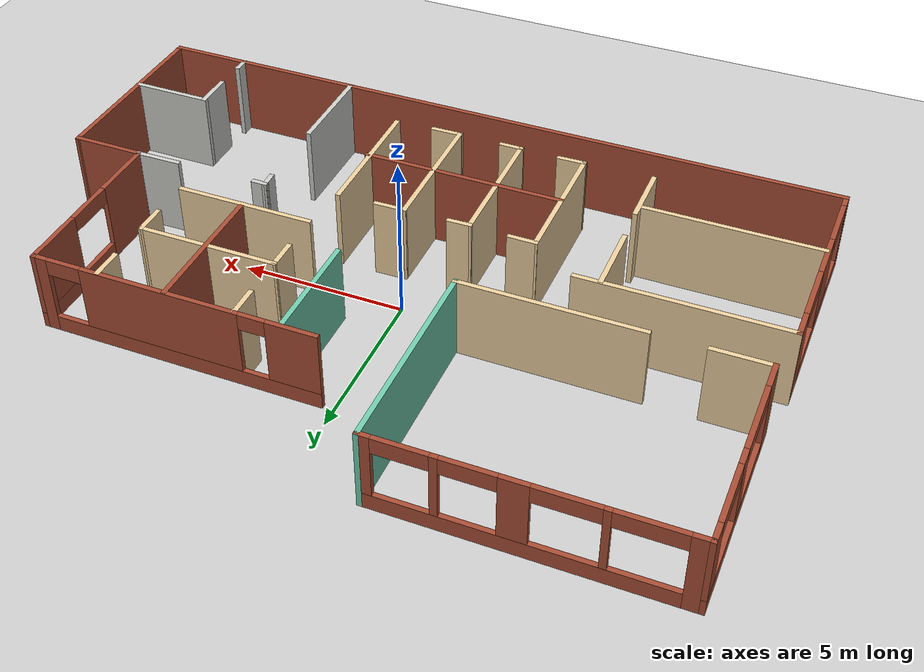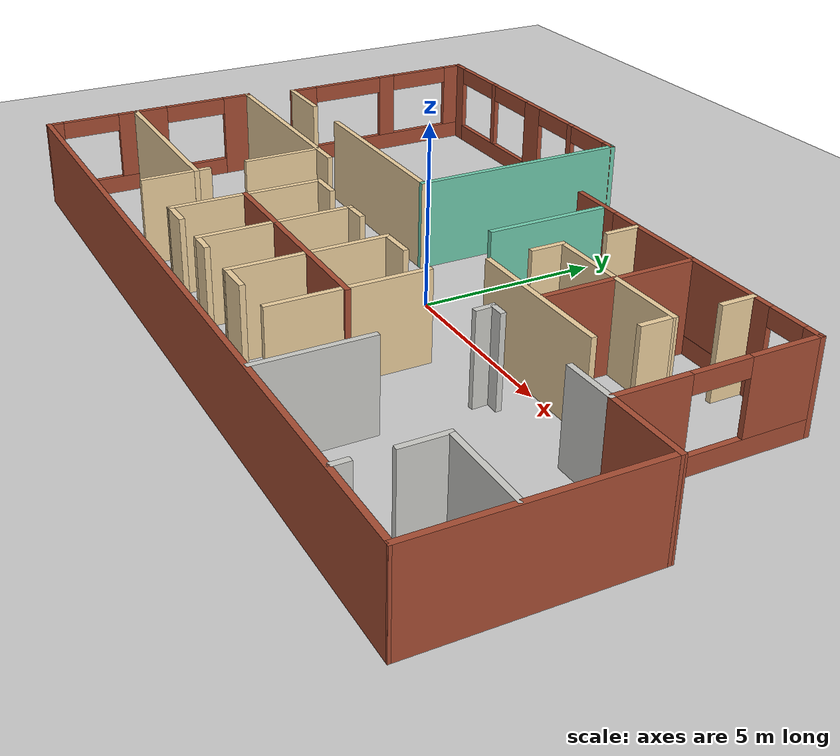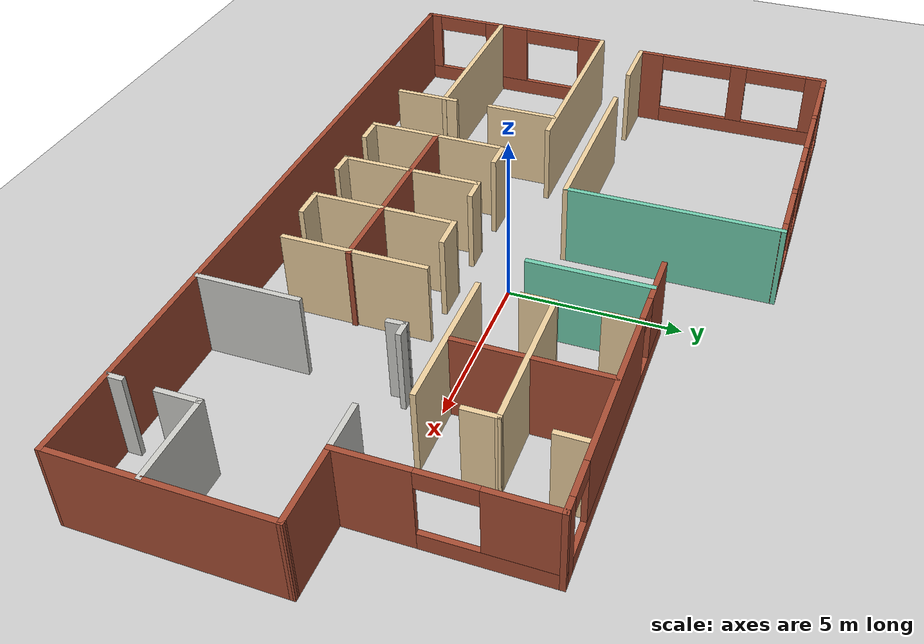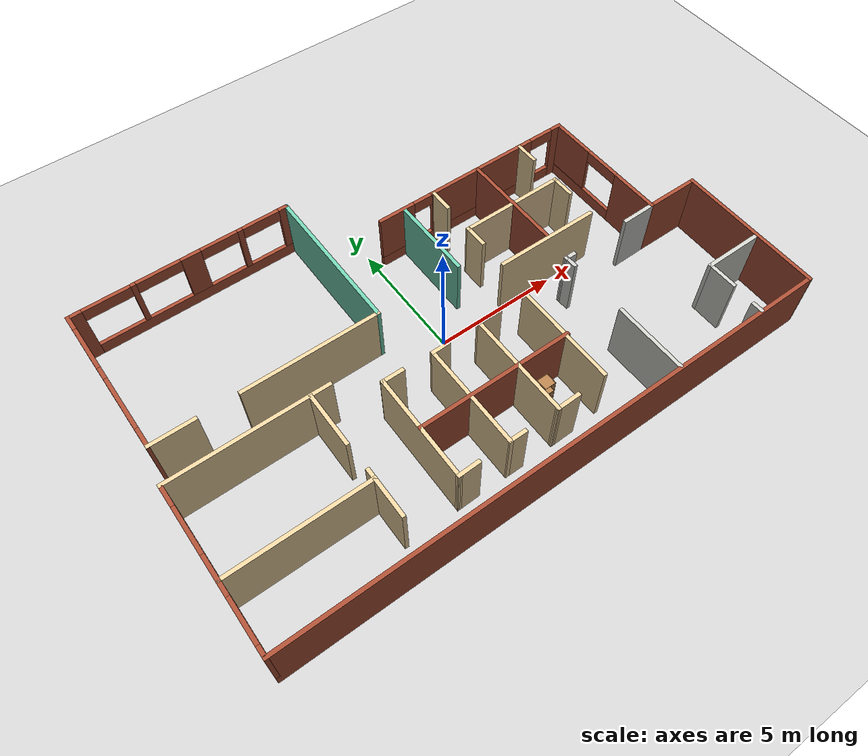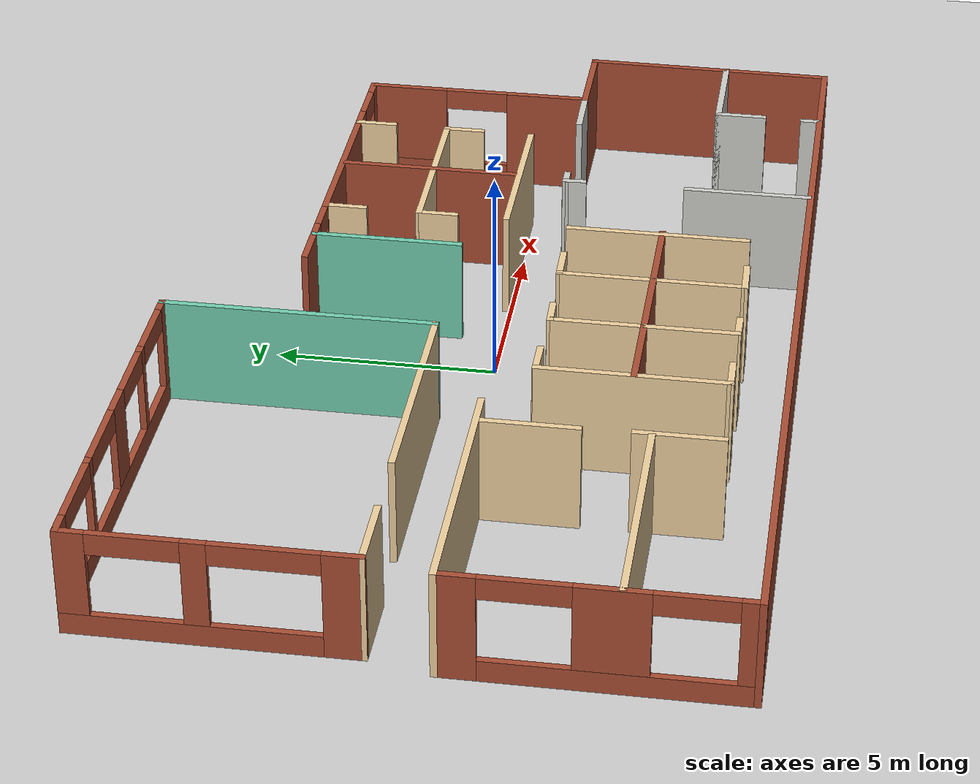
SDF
<sdf version="1.6">
 <world name="default">
  <model name="ground_plane">
   <static>1</static>
   <link name="link">
    <collision name="collision">
     <geometry><plane><normal>0 0 1</normal><size>100 100</size></plane></geometry>
     <surface><friction><ode><mu>100</mu><mu2>50</mu2></ode></friction></surface>
    </collision>
    <visual name="visual">
     <cast_shadows>0</cast_shadows>
     <geometry><plane><normal>0 0 1</normal><size>100 100</size></plane></geometry>
     <material>
      <script><uri>file://media/materials/scripts/gazebo.material</uri><name>Gazebo/Grey</name></script>
     </material>
    </visual>
   </link>
  </model>
  <model name="Building_0">
   <pose>0.05167 0.163501 0 0 -0 0</pose>
   <link name="Wall_0">
    <collision name="Wall_0_Collision">
     <geometry><box><size>1.81111 0.15 2.5</size></box></geometry>
     <pose>0 0 1.25 0 -0 0</pose>
    </collision>
    <visual name="Wall_0_Visual">
     <pose>0 0 1.25 0 -0 0</pose>
     <geometry><box><size>1.81111 0.15 2.5</size></box></geometry>
     <material>
      <script><uri>file://media/materials/scripts/gazebo.material</uri><name>Gazebo/Grey</name></script>
      <ambient>0.921569 0.807843 0.615686 1</ambient>
     </material>
     <meta><layer>0</layer></meta>
    </visual>
    <pose>-9.94044 0.832232 0 0 -0 3.14159</pose>
   </link>
   <link name="Wall_1">
    <pose>-10.7784 3.88973 0 0 -0 1.57325</pose>
    <visual name="Wall_1_Visual_0">
     <pose>-2.69664 0 1.25 0 -0 0</pose>
     <geometry><box><size>0.871954 0.15 2.5</size></box></geometry>
     <material>
      <script><uri>file://media/materials/scripts/gazebo.material</uri><name>Gazebo/Bricks</name></script>
      <ambient>1 1 1 1</ambient>
     </material>
     <meta><layer>0</layer></meta>
    </visual>
    <collision name="Wall_1_Collision_0">
     <geometry><box><size>0.871954 0.15 2.5</size></box></geometry>
     <pose>-2.69664 0 1.25 0 -0 0</pose>
    </collision>
    <visual name="Wall_1_Visual_1">
     <pose>0.435977 0 0.25 0 -0 0</pose>
     <geometry><box><size>5.39327 0.15 0.5</size></box></geometry>
     <material>
      <script><uri>file://media/materials/scripts/gazebo.material</uri><name>Gazebo/Bricks</name></script>
      <ambient>1 1 1 1</ambient>
     </material>
     <meta><layer>0</layer></meta>
    </visual>
    <collision name="Wall_1_Collision_1">
     <geometry><box><size>5.39327 0.15 0.5</size></box></geometry>
     <pose>0.435977 0 0.25 0 -0 0</pose>
    </collision>
    <visual name="Wall_1_Visual_2">
     <pose>0.290907 0 1.5 0 -0 0</pose>
     <geometry><box><size>0.529134 0.15 2</size></box></geometry>
     <material>
      <script><uri>file://media/materials/scripts/gazebo.material</uri><name>Gazebo/Bricks</name></script>
      <ambient>1 1 1 1</ambient>
     </material>
     <meta><layer>0</layer></meta>
    </visual>
    <collision name="Wall_1_Collision_2">
     <geometry><box><size>0.529134 0.15 2</size></box></geometry>
     <pose>0.290907 0 1.5 0 -0 0</pose>
    </collision>
    <visual name="Wall_1_Visual_3">
     <pose>2.80354 0 1.5 0 -0 0</pose>
     <geometry><box><size>0.658139 0.15 2</size></box></geometry>
     <material>
      <script><uri>file://media/materials/scripts/gazebo.material</uri><name>Gazebo/Bricks</name></script>
      <ambient>1 1 1 1</ambient>
     </material>
     <meta><layer>0</layer></meta>
    </visual>
    <collision name="Wall_1_Collision_3">
     <geometry><box><size>0.658139 0.15 2</size></box></geometry>
     <pose>2.80354 0 1.5 0 -0 0</pose>
    </collision>
    <visual name="Wall_1_Visual_4">
     <pose>-1.11716 0 2.25 0 -0 0</pose>
     <geometry><box><size>2.287 0.15 0.5</size></box></geometry>
     <material>
      <script><uri>file://media/materials/scripts/gazebo.material</uri><name>Gazebo/Bricks</name></script>
      <ambient>1 1 1 1</ambient>
     </material>
     <meta><layer>0</layer></meta>
    </visual>
    <collision name="Wall_1_Collision_4">
     <geometry><box><size>2.287 0.15 0.5</size></box></geometry>
     <pose>-1.11716 0 2.25 0 -0 0</pose>
    </collision>
    <visual name="Wall_1_Visual_5">
     <pose>1.51497 0 2.25 0 -0 0</pose>
     <geometry><box><size>1.919 0.15 0.5</size></box></geometry>
     <material>
      <script><uri>file://media/materials/scripts/gazebo.material</uri><name>Gazebo/Bricks</name></script>
      <ambient>1 1 1 1</ambient>
     </material>
     <meta><layer>0</layer></meta>
    </visual>
    <collision name="Wall_1_Collision_5">
     <geometry><box><size>1.919 0.15 0.5</size></box></geometry>
     <pose>1.51497 0 2.25 0 -0 0</pose>
    </collision>
   </link>
   <link name="Wall_10">
    <collision name="Wall_10_Collision">
     <geometry><box><size>2.28143 0.15 2.5</size></box></geometry>
     <pose>0 0 1.25 0 -0 0</pose>
    </collision>
    <visual name="Wall_10_Visual">
     <pose>0 0 1.25 0 -0 0</pose>
     <geometry><box><size>2.28143 0.15 2.5</size></box></geometry>
     <material>
      <script><uri>file://media/materials/scripts/gazebo.material</uri><name>Gazebo/Bricks</name></script>
      <ambient>1 1 1 1</ambient>
     </material>
     <meta><layer>0</layer></meta>
    </visual>
    <pose>9.99956 -1.11177 0 0 -0 3.14159</pose>
   </link>
   <link name="Wall_11">
    <pose>8.93406 1.56323 0 0 -0 1.5708</pose>
    <visual name="Wall_11_Visual_0">
     <pose>-1.73209 0 1.25 0 -0 0</pose>
     <geometry><box><size>2.03581 0.15 2.5</size></box></geometry>
     <material>
      <script><uri>file://media/materials/scripts/gazebo.material</uri><name>Gazebo/Bricks</name></script>
      <ambient>1 1 1 1</ambient>
     </material>
     <meta><layer>0</layer></meta>
    </visual>
    <collision name="Wall_11_Collision_0">
     <geometry><box><size>2.03581 0.15 2.5</size></box></geometry>
     <pose>-1.73209 0 1.25 0 -0 0</pose>
    </collision>
    <visual name="Wall_11_Visual_1">
     <pose>1.01791 0 0.25 0 -0 0</pose>
     <geometry><box><size>3.46419 0.15 0.5</size></box></geometry>
     <material>
      <script><uri>file://media/materials/scripts/gazebo.material</uri><name>Gazebo/Bricks</name></script>
      <ambient>1 1 1 1</ambient>
     </material>
     <meta><layer>0</layer></meta>
    </visual>
    <collision name="Wall_11_Collision_1">
     <geometry><box><size>3.46419 0.15 0.5</size></box></geometry>
     <pose>1.01791 0 0.25 0 -0 0</pose>
    </collision>
    <visual name="Wall_11_Visual_2">
     <pose>1.7809 0 1.5 0 -0 0</pose>
     <geometry><box><size>1.93819 0.15 2</size></box></geometry>
     <material>
      <script><uri>file://media/materials/scripts/gazebo.material</uri><name>Gazebo/Bricks</name></script>
      <ambient>1 1 1 1</ambient>
     </material>
     <meta><layer>0</layer></meta>
    </visual>
    <collision name="Wall_11_Collision_2">
     <geometry><box><size>1.93819 0.15 2</size></box></geometry>
     <pose>1.7809 0 1.5 0 -0 0</pose>
    </collision>
    <visual name="Wall_11_Visual_3">
     <pose>0.04881 0 2.25 0 -0 0</pose>
     <geometry><box><size>1.526 0.15 0.5</size></box></geometry>
     <material>
      <script><uri>file://media/materials/scripts/gazebo.material</uri><name>Gazebo/Bricks</name></script>
      <ambient>1 1 1 1</ambient>
     </material>
     <meta><layer>0</layer></meta>
    </visual>
    <collision name="Wall_11_Collision_3">
     <geometry><box><size>1.526 0.15 0.5</size></box></geometry>
     <pose>0.04881 0 2.25 0 -0 0</pose>
    </collision>
   </link>
   <link name="Wall_12">
    <pose>4.63406 4.23823 0 0 -0 3.14159</pose>
    <visual name="Wall_12_Visual_0">
     <pose>-4.12362 0 1.25 0 -0 0</pose>
     <geometry><box><size>0.502759 0.15 2.5</size></box></geometry>
     <material>
      <script><uri>file://media/materials/scripts/gazebo.material</uri><name>Gazebo/Bricks</name></script>
      <ambient>1 1 1 1</ambient>
     </material>
     <meta><layer>0</layer></meta>
    </visual>
    <collision name="Wall_12_Collision_0">
     <geometry><box><size>0.502759 0.15 2.5</size></box></geometry>
     <pose>-4.12362 0 1.25 0 -0 0</pose>
    </collision>
    <visual name="Wall_12_Visual_1">
     <pose>0.25138 0 0.25 0 -0 0</pose>
     <geometry><box><size>8.24724 0.15 0.5</size></box></geometry>
     <material>
      <script><uri>file://media/materials/scripts/gazebo.material</uri><name>Gazebo/Bricks</name></script>
      <ambient>1 1 1 1</ambient>
     </material>
     <meta><layer>0</layer></meta>
    </visual>
    <collision name="Wall_12_Collision_1">
     <geometry><box><size>8.24724 0.15 0.5</size></box></geometry>
     <pose>0.25138 0 0.25 0 -0 0</pose>
    </collision>
    <visual name="Wall_12_Visual_2">
     <pose>-0.402272 0 1.5 0 -0 0</pose>
     <geometry><box><size>4.85594 0.15 2</size></box></geometry>
     <material>
      <script><uri>file://media/materials/scripts/gazebo.material</uri><name>Gazebo/Bricks</name></script>
      <ambient>1 1 1 1</ambient>
     </material>
     <meta><layer>0</layer></meta>
    </visual>
    <collision name="Wall_12_Collision_2">
     <geometry><box><size>4.85594 0.15 2</size></box></geometry>
     <pose>-0.402272 0 1.5 0 -0 0</pose>
    </collision>
    <visual name="Wall_12_Visual_3">
     <pose>3.60035 0 1.5 0 -0 0</pose>
     <geometry><box><size>1.5493 0.15 2</size></box></geometry>
     <material>
      <script><uri>file://media/materials/scripts/gazebo.material</uri><name>Gazebo/Bricks</name></script>
      <ambient>1 1 1 1</ambient>
     </material>
     <meta><layer>0</layer></meta>
    </visual>
    <collision name="Wall_12_Collision_3">
     <geometry><box><size>1.5493 0.15 2</size></box></geometry>
     <pose>3.60035 0 1.5 0 -0 0</pose>
    </collision>
    <visual name="Wall_12_Visual_4">
     <pose>-3.35124 0 2.25 0 -0 0</pose>
     <geometry><box><size>1.042 0.15 0.5</size></box></geometry>
     <material>
      <script><uri>file://media/materials/scripts/gazebo.material</uri><name>Gazebo/Bricks</name></script>
      <ambient>1 1 1 1</ambient>
     </material>
     <meta><layer>0</layer></meta>
    </visual>
    <collision name="Wall_12_Collision_4">
     <geometry><box><size>1.042 0.15 0.5</size></box></geometry>
     <pose>-3.35124 0 2.25 0 -0 0</pose>
    </collision>
    <visual name="Wall_12_Visual_5">
     <pose>2.4257 0 2.25 0 -0 0</pose>
     <geometry><box><size>0.8 0.15 0.5</size></box></geometry>
     <material>
      <script><uri>file://media/materials/scripts/gazebo.material</uri><name>Gazebo/Bricks</name></script>
      <ambient>1 1 1 1</ambient>
     </material>
     <meta><layer>0</layer></meta>
    </visual>
    <collision name="Wall_12_Collision_5">
     <geometry><box><size>0.8 0.15 0.5</size></box></geometry>
     <pose>2.4257 0 2.25 0 -0 0</pose>
    </collision>
   </link>
   <link name="Wall_14">
    <collision name="Wall_14_Collision">
     <geometry><box><size>5.5 0.15 2.5</size></box></geometry>
     <pose>0 0 1.25 0 -0 0</pose>
    </collision>
    <visual name="Wall_14_Visual">
     <pose>0 0 1.25 0 -0 0</pose>
     <geometry><box><size>5.5 0.15 2.5</size></box></geometry>
     <material>
      <script><uri>file://media/materials/scripts/gazebo.material</uri><name>Gazebo/Grey</name></script>
      <ambient>0.921569 0.807843 0.615686 1</ambient>
     </material>
     <meta><layer>0</layer></meta>
    </visual>
    <pose>-8.34794 -4.28377 0 0 -0 0</pose>
   </link>
   <link name="Wall_16">
    <collision name="Wall_16_Collision">
     <geometry><box><size>2.25 0.15 2.5</size></box></geometry>
     <pose>0 0 1.25 0 -0 0</pose>
    </collision>
    <visual name="Wall_16_Visual">
     <pose>0 0 1.25 0 -0 0</pose>
     <geometry><box><size>2.25 0.15 2.5</size></box></geometry>
     <material>
      <script><uri>file://media/materials/scripts/gazebo.material</uri><name>Gazebo/Grey</name></script>
      <ambient>0.921569 0.807843 0.615686 1</ambient>
     </material>
     <meta><layer>0</layer></meta>
    </visual>
    <pose>-5.71094 -1.71077 0 0 0 -1.5708</pose>
   </link>
   <link name="Wall_18">
    <collision name="Wall_18_Collision">
     <geometry><box><size>2 0.15 2.5</size></box></geometry>
     <pose>0 0 1.25 0 -0 0</pose>
    </collision>
    <visual name="Wall_18_Visual">
     <pose>0 0 1.25 0 -0 0</pose>
     <geometry><box><size>2 0.15 2.5</size></box></geometry>
     <material>
      <script><uri>file://media/materials/scripts/gazebo.material</uri><name>Gazebo/Grey</name></script>
      <ambient>0.921569 0.807843 0.615686 1</ambient>
     </material>
     <meta><layer>0</layer></meta>
    </visual>
    <pose>-5.67594 -4.85677 0 0 0 -1.5708</pose>
   </link>
   <link name="Wall_2">
    <pose>-6.44794 6.95473 0 0 -0 0.001729</pose>
    <visual name="Wall_2_Visual_0">
     <pose>-4.12925 0 1.25 0 -0 0</pose>
     <geometry><box><size>0.567323 0.15 2.5</size></box></geometry>
     <material>
      <script><uri>file://media/materials/scripts/gazebo.material</uri><name>Gazebo/Bricks</name></script>
      <ambient>1 1 1 1</ambient>
     </material>
     <meta><layer>0</layer></meta>
    </visual>
    <collision name="Wall_2_Collision_0">
     <geometry><box><size>0.567323 0.15 2.5</size></box></geometry>
     <pose>-4.12925 0 1.25 0 -0 0</pose>
    </collision>
    <visual name="Wall_2_Visual_1">
     <pose>0.283662 0 0.25 0 -0 0</pose>
     <geometry><box><size>8.2585 0.15 0.5</size></box></geometry>
     <material>
      <script><uri>file://media/materials/scripts/gazebo.material</uri><name>Gazebo/Bricks</name></script>
      <ambient>1 1 1 1</ambient>
     </material>
     <meta><layer>0</layer></meta>
    </visual>
    <collision name="Wall_2_Collision_1">
     <geometry><box><size>8.2585 0.15 0.5</size></box></geometry>
     <pose>0.283662 0 0.25 0 -0 0</pose>
    </collision>
    <visual name="Wall_2_Visual_2">
     <pose>-1.91466 0 1.5 0 -0 0</pose>
     <geometry><box><size>0.197862 0.15 2</size></box></geometry>
     <material>
      <script><uri>file://media/materials/scripts/gazebo.material</uri><name>Gazebo/Bricks</name></script>
      <ambient>1 1 1 1</ambient>
     </material>
     <meta><layer>0</layer></meta>
    </visual>
    <collision name="Wall_2_Collision_2">
     <geometry><box><size>0.197862 0.15 2</size></box></geometry>
     <pose>-1.91466 0 1.5 0 -0 0</pose>
    </collision>
    <visual name="Wall_2_Visual_3">
     <pose>0.342292 0 1.5 0 -0 0</pose>
     <geometry><box><size>0.792034 0.15 2</size></box></geometry>
     <material>
      <script><uri>file://media/materials/scripts/gazebo.material</uri><name>Gazebo/Bricks</name></script>
      <ambient>1 1 1 1</ambient>
     </material>
     <meta><layer>0</layer></meta>
    </visual>
    <collision name="Wall_2_Collision_3">
     <geometry><box><size>0.792034 0.15 2</size></box></geometry>
     <pose>0.342292 0 1.5 0 -0 0</pose>
    </collision>
    <visual name="Wall_2_Visual_4">
     <pose>2.35004 0 1.5 0 -0 0</pose>
     <geometry><box><size>0.221614 0.15 2</size></box></geometry>
     <material>
      <script><uri>file://media/materials/scripts/gazebo.material</uri><name>Gazebo/Bricks</name></script>
      <ambient>1 1 1 1</ambient>
     </material>
     <meta><layer>0</layer></meta>
    </visual>
    <collision name="Wall_2_Collision_4">
     <geometry><box><size>0.221614 0.15 2</size></box></geometry>
     <pose>2.35004 0 1.5 0 -0 0</pose>
    </collision>
    <visual name="Wall_2_Visual_5">
     <pose>4.20038 0 1.5 0 -0 0</pose>
     <geometry><box><size>0.425064 0.15 2</size></box></geometry>
     <material>
      <script><uri>file://media/materials/scripts/gazebo.material</uri><name>Gazebo/Bricks</name></script>
      <ambient>1 1 1 1</ambient>
     </material>
     <meta><layer>0</layer></meta>
    </visual>
    <collision name="Wall_2_Collision_5">
     <geometry><box><size>0.425064 0.15 2</size></box></geometry>
     <pose>4.20038 0 1.5 0 -0 0</pose>
    </collision>
    <visual name="Wall_2_Visual_6">
     <pose>-2.92959 0 2.25 0 -0 0</pose>
     <geometry><box><size>1.832 0.15 0.5</size></box></geometry>
     <material>
      <script><uri>file://media/materials/scripts/gazebo.material</uri><name>Gazebo/Bricks</name></script>
      <ambient>1 1 1 1</ambient>
     </material>
     <meta><layer>0</layer></meta>
    </visual>
    <collision name="Wall_2_Collision_6">
     <geometry><box><size>1.832 0.15 0.5</size></box></geometry>
     <pose>-2.92959 0 2.25 0 -0 0</pose>
    </collision>
    <visual name="Wall_2_Visual_7">
     <pose>-0.934725 0 2.25 0 -0 0</pose>
     <geometry><box><size>1.762 0.15 0.5</size></box></geometry>
     <material>
      <script><uri>file://media/materials/scripts/gazebo.material</uri><name>Gazebo/Bricks</name></script>
      <ambient>1 1 1 1</ambient>
     </material>
     <meta><layer>0</layer></meta>
    </visual>
    <collision name="Wall_2_Collision_7">
     <geometry><box><size>1.762 0.15 0.5</size></box></geometry>
     <pose>-0.934725 0 2.25 0 -0 0</pose>
    </collision>
    <visual name="Wall_2_Visual_8">
     <pose>1.48877 0 2.25 0 -0 0</pose>
     <geometry><box><size>1.50092 0.15 0.5</size></box></geometry>
     <material>
      <script><uri>file://media/materials/scripts/gazebo.material</uri><name>Gazebo/Bricks</name></script>
      <ambient>1 1 1 1</ambient>
     </material>
     <meta><layer>0</layer></meta>
    </visual>
    <collision name="Wall_2_Collision_8">
     <geometry><box><size>1.50092 0.15 0.5</size></box></geometry>
     <pose>1.48877 0 2.25 0 -0 0</pose>
    </collision>
    <visual name="Wall_2_Visual_9">
     <pose>3.22435 0 2.25 0 -0 0</pose>
     <geometry><box><size>1.527 0.15 0.5</size></box></geometry>
     <material>
      <script><uri>file://media/materials/scripts/gazebo.material</uri><name>Gazebo/Bricks</name></script>
      <ambient>1 1 1 1</ambient>
     </material>
     <meta><layer>0</layer></meta>
    </visual>
    <collision name="Wall_2_Collision_9">
     <geometry><box><size>1.527 0.15 0.5</size></box></geometry>
     <pose>3.22435 0 2.25 0 -0 0</pose>
    </collision>
   </link>
   <link name="Wall_20">
    <collision name="Wall_20_Collision">
     <geometry><box><size>0.91255 0.15 2.5</size></box></geometry>
     <pose>0 0 1.25 0 -0 0</pose>
    </collision>
    <visual name="Wall_20_Visual">
     <pose>0 0 1.25 0 -0 0</pose>
     <geometry><box><size>0.91255 0.15 2.5</size></box></geometry>
     <material>
      <script><uri>file://media/materials/scripts/gazebo.material</uri><name>Gazebo/Grey</name></script>
      <ambient>0.921569 0.807843 0.615686 1</ambient>
     </material>
     <meta><layer>0</layer></meta>
    </visual>
    <pose>-3.14644 -1.56577 0 0 -0 3.14159</pose>
   </link>
   <link name="Wall_21">
    <collision name="Wall_21_Collision">
     <geometry><box><size>4.32 0.15 2.5</size></box></geometry>
     <pose>0 0 1.25 0 -0 0</pose>
    </collision>
    <visual name="Wall_21_Visual">
     <pose>0 0 1.25 0 -0 0</pose>
     <geometry><box><size>4.32 0.15 2.5</size></box></geometry>
     <material>
      <script><uri>file://media/materials/scripts/gazebo.material</uri><name>Gazebo/Grey</name></script>
      <ambient>0.921569 0.807843 0.615686 1</ambient>
     </material>
     <meta><layer>0</layer></meta>
    </visual>
    <pose>-3.53644 -3.65077 0 0 0 -1.57487</pose>
   </link>
   <link name="Wall_22">
    <collision name="Wall_22_Collision">
     <geometry><box><size>0.91255 0.15 2.5</size></box></geometry>
     <pose>0 0 1.25 0 -0 0</pose>
    </collision>
    <visual name="Wall_22_Visual">
     <pose>0 0 1.25 0 -0 0</pose>
     <geometry><box><size>0.91255 0.15 2.5</size></box></geometry>
     <material>
      <script><uri>file://media/materials/scripts/gazebo.material</uri><name>Gazebo/Grey</name></script>
      <ambient>0.921569 0.807843 0.615686 1</ambient>
     </material>
     <meta><layer>0</layer></meta>
    </visual>
    <pose>-3.16394 -5.72727 0 0 -0 0.022306</pose>
   </link>
   <link name="Wall_24">
    <collision name="Wall_24_Collision">
     <geometry><box><size>6.25 0.15 2.5</size></box></geometry>
     <pose>0 0 1.25 0 -0 0</pose>
    </collision>
    <visual name="Wall_24_Visual">
     <pose>0 0 1.25 0 -0 0</pose>
     <geometry><box><size>6.25 0.15 2.5</size></box></geometry>
     <material>
      <script><uri>file://media/materials/scripts/gazebo.material</uri><name>Gazebo/Bricks</name></script>
      <ambient>1 1 1 1</ambient>
     </material>
     <meta><layer>0</layer></meta>
    </visual>
    <pose>-0.484936 -3.68277 0 0 -0 0</pose>
   </link>
   <link name="Wall_26">
    <collision name="Wall_26_Collision">
     <geometry><box><size>0.765183 0.15 2.5</size></box></geometry>
     <pose>0 0 1.25 0 -0 0</pose>
    </collision>
    <visual name="Wall_26_Visual">
     <pose>0 0 1.25 0 -0 0</pose>
     <geometry><box><size>0.765183 0.15 2.5</size></box></geometry>
     <material>
      <script><uri>file://media/materials/scripts/gazebo.material</uri><name>Gazebo/Grey</name></script>
      <ambient>0.921569 0.807843 0.615686 1</ambient>
     </material>
     <meta><layer>0</layer></meta>
    </visual>
    <pose>-1.23644 -1.60827 0 0 0 -3.11721</pose>
   </link>
   <link name="Wall_27">
    <collision name="Wall_27_Collision">
     <geometry><box><size>4.26621 0.15 2.5</size></box></geometry>
     <pose>0 0 1.25 0 -0 0</pose>
    </collision>
    <visual name="Wall_27_Visual">
     <pose>0 0 1.25 0 -0 0</pose>
     <geometry><box><size>4.26621 0.15 2.5</size></box></geometry>
     <material>
      <script><uri>file://media/materials/scripts/gazebo.material</uri><name>Gazebo/Grey</name></script>
      <ambient>0.921569 0.807843 0.615686 1</ambient>
     </material>
     <meta><layer>0</layer></meta>
    </visual>
    <pose>-1.54244 -3.67377 0 0 0 -1.57007</pose>
   </link>
   <link name="Wall_28">
    <collision name="Wall_28_Collision">
     <geometry><box><size>0.75 0.15 2.5</size></box></geometry>
     <pose>0 0 1.25 0 -0 0</pose>
    </collision>
    <visual name="Wall_28_Visual">
     <pose>0 0 1.25 0 -0 0</pose>
     <geometry><box><size>0.75 0.15 2.5</size></box></geometry>
     <material>
      <script><uri>file://media/materials/scripts/gazebo.material</uri><name>Gazebo/Grey</name></script>
      <ambient>0.921569 0.807843 0.615686 1</ambient>
     </material>
     <meta><layer>0</layer></meta>
    </visual>
    <pose>-1.24094 -5.73177 0 0 -0 0</pose>
   </link>
   <link name="Wall_3">
    <collision name="Wall_3_Collision">
     <geometry><box><size>6.28044 0.15 2.5</size></box></geometry>
     <pose>0 0 1.25 0 -0 0</pose>
    </collision>
    <visual name="Wall_3_Visual">
     <pose>0 0 1.25 0 -0 0</pose>
     <geometry><box><size>6.28044 0.15 2.5</size></box></geometry>
     <material>
      <script><uri>file://media/materials/scripts/gazebo.material</uri><name>Gazebo/Grey</name></script>
      <ambient>0.435294 0.796078 0.67451 1</ambient>
     </material>
     <meta><layer>0</layer></meta>
    </visual>
    <pose>-2.10994 3.89723 0 0 0 -1.5708</pose>
   </link>
   <link name="Wall_30">
    <collision name="Wall_30_Collision">
     <geometry><box><size>1.01749 0.15 2.5</size></box></geometry>
     <pose>0 0 1.25 0 -0 0</pose>
    </collision>
    <visual name="Wall_30_Visual">
     <pose>0 0 1.25 0 -0 0</pose>
     <geometry><box><size>1.01749 0.15 2.5</size></box></geometry>
     <material>
      <script><uri>file://media/materials/scripts/gazebo.material</uri><name>Gazebo/Grey</name></script>
      <ambient>0.921569 0.807843 0.615686 1</ambient>
     </material>
     <meta><layer>0</layer></meta>
    </visual>
    <pose>0.876564 -1.55727 0 0 0 -3.12199</pose>
   </link>
   <link name="Wall_31">
    <collision name="Wall_31_Collision">
     <geometry><box><size>4.32039 0.15 2.5</size></box></geometry>
     <pose>0 0 1.25 0 -0 0</pose>
    </collision>
    <visual name="Wall_31_Visual">
     <pose>0 0 1.25 0 -0 0</pose>
     <geometry><box><size>4.32039 0.15 2.5</size></box></geometry>
     <material>
      <script><uri>file://media/materials/scripts/gazebo.material</uri><name>Gazebo/Grey</name></script>
      <ambient>0.921569 0.807843 0.615686 1</ambient>
     </material>
     <meta><layer>0</layer></meta>
    </visual>
    <pose>0.443064 -3.65077 0 0 0 -1.5708</pose>
   </link>
   <link name="Wall_32">
    <collision name="Wall_32_Collision">
     <geometry><box><size>1 0.15 2.5</size></box></geometry>
     <pose>0 0 1.25 0 -0 0</pose>
    </collision>
    <visual name="Wall_32_Visual">
     <pose>0 0 1.25 0 -0 0</pose>
     <geometry><box><size>1 0.15 2.5</size></box></geometry>
     <material>
      <script><uri>file://media/materials/scripts/gazebo.material</uri><name>Gazebo/Grey</name></script>
      <ambient>0.921569 0.807843 0.615686 1</ambient>
     </material>
     <meta><layer>0</layer></meta>
    </visual>
    <pose>0.868064 -5.72727 0 0 -0 0.019997</pose>
   </link>
   <link name="Wall_34">
    <collision name="Wall_34_Collision">
     <geometry><box><size>4.25 0.15 2.5</size></box></geometry>
     <pose>0 0 1.25 0 -0 0</pose>
    </collision>
    <visual name="Wall_34_Visual">
     <pose>0 0 1.25 0 -0 0</pose>
     <geometry><box><size>4.25 0.15 2.5</size></box></geometry>
     <material>
      <script><uri>file://media/materials/scripts/gazebo.material</uri><name>Gazebo/Grey</name></script>
      <ambient>0.921569 0.807843 0.615686 1</ambient>
     </material>
     <meta><layer>0</layer></meta>
    </visual>
    <pose>2.49906 -3.58077 0 0 0 -1.5708</pose>
   </link>
   <link name="Wall_36">
    <collision name="Wall_36_Collision">
     <geometry><box><size>3 0.15 2.5</size></box></geometry>
     <pose>0 0 1.25 0 -0 0</pose>
    </collision>
    <visual name="Wall_36_Visual">
     <pose>0 0 1.25 0 -0 0</pose>
     <geometry><box><size>3 0.15 2.5</size></box></geometry>
     <material>
      <script><uri>file://media/materials/scripts/gazebo.material</uri><name>Gazebo/CeilingTiled</name></script>
      <ambient>1 1 1 1</ambient>
     </material>
     <meta><layer>0</layer></meta>
    </visual>
    <pose>4.72106 -5.47477 0 0 0 -1.5708</pose>
   </link>
   <link name="Wall_38">
    <collision name="Wall_38_Collision">
     <geometry><box><size>0.570324 0.15 2.5</size></box></geometry>
     <pose>0 0 1.25 0 -0 0</pose>
    </collision>
    <visual name="Wall_38_Visual">
     <pose>0 0 1.25 0 -0 0</pose>
     <geometry><box><size>0.570324 0.15 2.5</size></box></geometry>
     <material>
      <script><uri>file://media/materials/scripts/gazebo.material</uri><name>Gazebo/CeilingTiled</name></script>
      <ambient>1 1 1 1</ambient>
     </material>
     <meta><layer>0</layer></meta>
    </visual>
    <pose>4.71206 -1.37377 0 0 -0 1.61363</pose>
   </link>
   <link name="Wall_39">
    <collision name="Wall_39_Collision">
     <geometry><box><size>0.5 0.15 2.5</size></box></geometry>
     <pose>0 0 1.25 0 -0 0</pose>
    </collision>
    <visual name="Wall_39_Visual">
     <pose>0 0 1.25 0 -0 0</pose>
     <geometry><box><size>0.5 0.15 2.5</size></box></geometry>
     <material>
      <script><uri>file://media/materials/scripts/gazebo.material</uri><name>Gazebo/CeilingTiled</name></script>
      <ambient>1 1 1 1</ambient>
     </material>
     <meta><layer>0</layer></meta>
    </visual>
    <pose>4.87806 -1.16377 0 0 -0 0</pose>
   </link>
   <link name="Wall_4">
    <collision name="Wall_4_Collision">
     <geometry><box><size>5.5 0.15 2.5</size></box></geometry>
     <pose>0 0 1.25 0 -0 0</pose>
    </collision>
    <visual name="Wall_4_Visual">
     <pose>0 0 1.25 0 -0 0</pose>
     <geometry><box><size>5.5 0.15 2.5</size></box></geometry>
     <material>
      <script><uri>file://media/materials/scripts/gazebo.material</uri><name>Gazebo/Grey</name></script>
      <ambient>0.921569 0.807843 0.615686 1</ambient>
     </material>
     <meta><layer>0</layer></meta>
    </visual>
    <pose>-4.78494 0.832232 0 0 -0 3.14159</pose>
   </link>
   <link name="Wall_41">
    <collision name="Wall_41_Collision">
     <geometry><box><size>1.46 0.15 2.5</size></box></geometry>
     <pose>0 0 1.25 0 -0 0</pose>
    </collision>
    <visual name="Wall_41_Visual">
     <pose>0 0 1.25 0 -0 0</pose>
     <geometry><box><size>1.46 0.15 2.5</size></box></geometry>
     <material>
      <script><uri>file://media/materials/scripts/gazebo.material</uri><name>Gazebo/CeilingTiled</name></script>
      <ambient>1 1 1 1</ambient>
     </material>
     <meta><layer>0</layer></meta>
    </visual>
    <pose>8.27906 -1.12027 0 0 -0 0.012976</pose>
   </link>
   <link name="Wall_43">
    <collision name="Wall_43_Collision">
     <geometry><box><size>2.5 0.15 2.5</size></box></geometry>
     <pose>0 0 1.25 0 -0 0</pose>
    </collision>
    <visual name="Wall_43_Visual">
     <pose>0 0 1.25 0 -0 0</pose>
     <geometry><box><size>2.5 0.15 2.5</size></box></geometry>
     <material>
      <script><uri>file://media/materials/scripts/gazebo.material</uri><name>Gazebo/CeilingTiled</name></script>
      <ambient>1 1 1 1</ambient>
     </material>
     <meta><layer>0</layer></meta>
    </visual>
    <pose>9.80706 -4.46977 0 0 -0 3.14159</pose>
   </link>
   <link name="Wall_44">
    <collision name="Wall_44_Collision">
     <geometry><box><size>1.25 0.15 2.5</size></box></geometry>
     <pose>0 0 1.25 0 -0 0</pose>
    </collision>
    <visual name="Wall_44_Visual">
     <pose>0 0 1.25 0 -0 0</pose>
     <geometry><box><size>1.25 0.15 2.5</size></box></geometry>
     <material>
      <script><uri>file://media/materials/scripts/gazebo.material</uri><name>Gazebo/CeilingTiled</name></script>
      <ambient>1 1 1 1</ambient>
     </material>
     <meta><layer>0</layer></meta>
    </visual>
    <pose>8.63206 -5.01977 0 0 0 -1.5708</pose>
   </link>
   <link name="Wall_46">
    <collision name="Wall_46_Collision">
     <geometry><box><size>0.5 0.15 2.5</size></box></geometry>
     <pose>0 0 1.25 0 -0 0</pose>
    </collision>
    <visual name="Wall_46_Visual">
     <pose>0 0 1.25 0 -0 0</pose>
     <geometry><box><size>0.5 0.15 2.5</size></box></geometry>
     <material>
      <script><uri>file://media/materials/scripts/gazebo.material</uri><name>Gazebo/CeilingTiled</name></script>
      <ambient>1 1 1 1</ambient>
     </material>
     <meta><layer>0</layer></meta>
    </visual>
    <pose>8.58606 -6.74377 0 0 0 -1.5708</pose>
   </link>
   <link name="Wall_48">
    <collision name="Wall_48_Collision">
     <geometry><box><size>3.5 0.15 2.5</size></box></geometry>
     <pose>0 0 1.25 0 -0 0</pose>
    </collision>
    <visual name="Wall_48_Visual">
     <pose>0 0 1.25 0 -0 0</pose>
     <geometry><box><size>3.5 0.15 2.5</size></box></geometry>
     <material>
      <script><uri>file://media/materials/scripts/gazebo.material</uri><name>Gazebo/Grey</name></script>
      <ambient>0.435294 0.796078 0.67451 1</ambient>
     </material>
     <meta><layer>0</layer></meta>
    </visual>
    <pose>1.36306 2.54023 0 0 0 -1.5708</pose>
   </link>
   <link name="Wall_50">
    <collision name="Wall_50_Collision">
     <geometry><box><size>1 0.15 2.5</size></box></geometry>
     <pose>0 0 1.25 0 -0 0</pose>
    </collision>
    <visual name="Wall_50_Visual">
     <pose>0 0 1.25 0 -0 0</pose>
     <geometry><box><size>1 0.15 2.5</size></box></geometry>
     <material>
      <script><uri>file://media/materials/scripts/gazebo.material</uri><name>Gazebo/Grey</name></script>
      <ambient>0.921569 0.807843 0.615686 1</ambient>
     </material>
     <meta><layer>0</layer></meta>
    </visual>
    <pose>2.72706 3.75523 0 0 0 -1.5708</pose>
   </link>
   <link name="Wall_52">
    <collision name="Wall_52_Collision">
     <geometry><box><size>1 0.15 2.5</size></box></geometry>
     <pose>0 0 1.25 0 -0 0</pose>
    </collision>
    <visual name="Wall_52_Visual">
     <pose>0 0 1.25 0 -0 0</pose>
     <geometry><box><size>1 0.15 2.5</size></box></geometry>
     <material>
      <script><uri>file://media/materials/scripts/gazebo.material</uri><name>Gazebo/Grey</name></script>
      <ambient>0.921569 0.807843 0.615686 1</ambient>
     </material>
     <meta><layer>0</layer></meta>
    </visual>
    <pose>6.90706 3.79023 0 0 0 -1.5708</pose>
   </link>
   <link name="Wall_54">
    <collision name="Wall_54_Collision">
     <geometry><box><size>4.25 0.15 2.5</size></box></geometry>
     <pose>0 0 1.25 0 -0 0</pose>
    </collision>
    <visual name="Wall_54_Visual">
     <pose>0 0 1.25 0 -0 0</pose>
     <geometry><box><size>4.25 0.15 2.5</size></box></geometry>
     <material>
      <script><uri>file://media/materials/scripts/gazebo.material</uri><name>Gazebo/Bricks</name></script>
      <ambient>1 1 1 1</ambient>
     </material>
     <meta><layer>0</layer></meta>
    </visual>
    <pose>4.82606 2.14823 0 0 0 -1.5708</pose>
   </link>
   <link name="Wall_56">
    <collision name="Wall_56_Collision">
     <geometry><box><size>4.25 0.15 2.5</size></box></geometry>
     <pose>0 0 1.25 0 -0 0</pose>
    </collision>
    <visual name="Wall_56_Visual">
     <pose>0 0 1.25 0 -0 0</pose>
     <geometry><box><size>4.25 0.15 2.5</size></box></geometry>
     <material>
      <script><uri>file://media/materials/scripts/gazebo.material</uri><name>Gazebo/Grey</name></script>
      <ambient>0.921569 0.807843 0.615686 1</ambient>
     </material>
     <meta><layer>0</layer></meta>
    </visual>
    <pose>4.75906 -0.034768 0 0 -0 0</pose>
   </link>
   <link name="Wall_59">
    <collision name="Wall_59_Collision">
     <geometry><box><size>4.32 0.15 2.5</size></box></geometry>
     <pose>0 0 1.25 0 -0 0</pose>
    </collision>
    <visual name="Wall_59_Visual">
     <pose>0 0 1.25 0 -0 0</pose>
     <geometry><box><size>4.32 0.15 2.5</size></box></geometry>
     <material>
      <script><uri>file://media/materials/scripts/gazebo.material</uri><name>Gazebo/Grey</name></script>
      <ambient>0.921569 0.807843 0.615686 1</ambient>
     </material>
     <meta><layer>0</layer></meta>
    </visual>
    <pose>4.79406 2.03123 0 0 -0 0.004317</pose>
   </link>
   <link name="Wall_6">
    <collision name="Wall_6_Collision">
     <geometry><box><size>6.25 0.15 2.5</size></box></geometry>
     <pose>0 0 1.25 0 -0 0</pose>
    </collision>
    <visual name="Wall_6_Visual">
     <pose>0 0 1.25 0 -0 0</pose>
     <geometry><box><size>6.25 0.15 2.5</size></box></geometry>
     <material>
      <script><uri>file://media/materials/scripts/gazebo.material</uri><name>Gazebo/Grey</name></script>
      <ambient>0.921569 0.807843 0.615686 1</ambient>
     </material>
     <meta><layer>0</layer></meta>
    </visual>
    <pose>-8.01594 -0.611768 0 0 -0 3.14159</pose>
   </link>
   <link name="Wall_60">
    <collision name="Wall_60_Collision">
     <geometry><box><size>1 0.15 2.5</size></box></geometry>
     <pose>0 0 1.25 0 -0 0</pose>
    </collision>
    <visual name="Wall_60_Visual">
     <pose>0 0 1.25 0 -0 0</pose>
     <geometry><box><size>1 0.15 2.5</size></box></geometry>
     <material>
      <script><uri>file://media/materials/scripts/gazebo.material</uri><name>Gazebo/Grey</name></script>
      <ambient>0.921569 0.807843 0.615686 1</ambient>
     </material>
     <meta><layer>0</layer></meta>
    </visual>
    <pose>6.87906 1.61523 0 0 0 -1.5708</pose>
   </link>
   <link name="Wall_62">
    <collision name="Wall_62_Collision">
     <geometry><box><size>1 0.15 2.5</size></box></geometry>
     <pose>0 0 1.25 0 -0 0</pose>
    </collision>
    <visual name="Wall_62_Visual">
     <pose>0 0 1.25 0 -0 0</pose>
     <geometry><box><size>1 0.15 2.5</size></box></geometry>
     <material>
      <script><uri>file://media/materials/scripts/gazebo.material</uri><name>Gazebo/Grey</name></script>
      <ambient>0.921569 0.807843 0.615686 1</ambient>
     </material>
     <meta><layer>0</layer></meta>
    </visual>
    <pose>2.70906 1.59723 0 0 0 -1.5708</pose>
   </link>
   <link name="Wall_7">
    <pose>-11.0659 -3.78677 0 0 0 -1.5708</pose>
    <visual name="Wall_7_Visual_0">
     <pose>-2.79306 0 1.25 0 -0 0</pose>
     <geometry><box><size>0.913886 0.15 2.5</size></box></geometry>
     <material>
      <script><uri>file://media/materials/scripts/gazebo.material</uri><name>Gazebo/Bricks</name></script>
      <ambient>1 1 1 1</ambient>
     </material>
     <meta><layer>0</layer></meta>
    </visual>
    <collision name="Wall_7_Collision_0">
     <geometry><box><size>0.913886 0.15 2.5</size></box></geometry>
     <pose>-2.79306 0 1.25 0 -0 0</pose>
    </collision>
    <visual name="Wall_7_Visual_1">
     <pose>0.456943 0 0.25 0 -0 0</pose>
     <geometry><box><size>5.58611 0.15 0.5</size></box></geometry>
     <material>
      <script><uri>file://media/materials/scripts/gazebo.material</uri><name>Gazebo/Bricks</name></script>
      <ambient>1 1 1 1</ambient>
     </material>
     <meta><layer>0</layer></meta>
    </visual>
    <collision name="Wall_7_Collision_1">
     <geometry><box><size>5.58611 0.15 0.5</size></box></geometry>
     <pose>0.456943 0 0.25 0 -0 0</pose>
    </collision>
    <visual name="Wall_7_Visual_2">
     <pose>0.299371 0 1.5 0 -0 0</pose>
     <geometry><box><size>1.54097 0.15 2</size></box></geometry>
     <material>
      <script><uri>file://media/materials/scripts/gazebo.material</uri><name>Gazebo/Bricks</name></script>
      <ambient>1 1 1 1</ambient>
     </material>
     <meta><layer>0</layer></meta>
    </visual>
    <collision name="Wall_7_Collision_2">
     <geometry><box><size>1.54097 0.15 2</size></box></geometry>
     <pose>0.299371 0 1.5 0 -0 0</pose>
    </collision>
    <visual name="Wall_7_Visual_3">
     <pose>3.00593 0 1.5 0 -0 0</pose>
     <geometry><box><size>0.488144 0.15 2</size></box></geometry>
     <material>
      <script><uri>file://media/materials/scripts/gazebo.material</uri><name>Gazebo/Bricks</name></script>
      <ambient>1 1 1 1</ambient>
     </material>
     <meta><layer>0</layer></meta>
    </visual>
    <collision name="Wall_7_Collision_3">
     <geometry><box><size>0.488144 0.15 2</size></box></geometry>
     <pose>3.00593 0 1.5 0 -0 0</pose>
    </collision>
    <visual name="Wall_7_Visual_4">
     <pose>-1.40361 0 2.25 0 -0 0</pose>
     <geometry><box><size>1.865 0.15 0.5</size></box></geometry>
     <material>
      <script><uri>file://media/materials/scripts/gazebo.material</uri><name>Gazebo/Bricks</name></script>
      <ambient>1 1 1 1</ambient>
     </material>
     <meta><layer>0</layer></meta>
    </visual>
    <collision name="Wall_7_Collision_4">
     <geometry><box><size>1.865 0.15 0.5</size></box></geometry>
     <pose>-1.40361 0 2.25 0 -0 0</pose>
    </collision>
    <visual name="Wall_7_Visual_5">
     <pose>1.91586 0 2.25 0 -0 0</pose>
     <geometry><box><size>1.692 0.15 0.5</size></box></geometry>
     <material>
      <script><uri>file://media/materials/scripts/gazebo.material</uri><name>Gazebo/Bricks</name></script>
      <ambient>1 1 1 1</ambient>
     </material>
     <meta><layer>0</layer></meta>
    </visual>
    <collision name="Wall_7_Collision_5">
     <geometry><box><size>1.692 0.15 0.5</size></box></geometry>
     <pose>1.91586 0 2.25 0 -0 0</pose>
    </collision>
   </link>
   <link name="Wall_8">
    <collision name="Wall_8_Collision">
     <geometry><box><size>22.211 0.15 2.5</size></box></geometry>
     <pose>0 0 1.25 0 -0 0</pose>
    </collision>
    <visual name="Wall_8_Visual">
     <pose>0 0 1.25 0 -0 0</pose>
     <geometry><box><size>22.211 0.15 2.5</size></box></geometry>
     <material>
      <script><uri>file://media/materials/scripts/gazebo.material</uri><name>Gazebo/Bricks</name></script>
      <ambient>1 1 1 1</ambient>
     </material>
     <meta><layer>0</layer></meta>
    </visual>
    <pose>-0.035436 -6.96177 0 0 -0 0</pose>
   </link>
   <link name="Wall_9">
    <collision name="Wall_9_Collision">
     <geometry><box><size>6 0.15 2.5</size></box></geometry>
     <pose>0 0 1.25 0 -0 0</pose>
    </collision>
    <visual name="Wall_9_Visual">
     <pose>0 0 1.25 0 -0 0</pose>
     <geometry><box><size>6 0.15 2.5</size></box></geometry>
     <material>
      <script><uri>file://media/materials/scripts/gazebo.material</uri><name>Gazebo/Bricks</name></script>
      <ambient>1 1 1 1</ambient>
     </material>
     <meta><layer>0</layer></meta>
    </visual>
    <pose>11.0301 -4.03677 0 0 -0 1.55883</pose>
   </link>
   <static>1</static>
  </model>
  <model name="cabinet_clone_0">
   <static>1</static>
   <link name="cabinet_bottom_plate">
    <inertial>
     <pose>0 0 -1 0 -0 0</pose>
     <inertia><ixx>2.05</ixx><ixy>0</ixy><ixz>0</ixz><iyy>2.05</iyy><iyz>0</iyz><izz>2.05</izz></inertia>
     <mass>25</mass>
    </inertial>
    <collision name="cabinet_bottom_plate_geom">
     <pose>0 0 0.01 0 -0 0</pose>
     <geometry><box><size>0.45 0.45 0.02</size></box></geometry>
    </collision>
    <visual name="cabinet_bottom_plate_geom_visual">
     <pose>0 0 0.01 0 -0 0</pose>
     <geometry><box><size>0.45 0.45 0.02</size></box></geometry>
     <material>
      <script><uri>file://media/materials/scripts/gazebo.material</uri><name>Gazebo/Wood</name></script>
     </material>
    </visual>
    <collision name="cabinet_bottom_plate_geom_cabinet_back_plate">
     <pose>0.235 0 0.51 0 -0 0</pose>
     <geometry><box><size>0.02 0.45 1.02</size></box></geometry>
    </collision>
    <visual name="cabinet_bottom_plate_geom_cabinet_back_plate_visual">
     <pose>0.235 0 0.51 0 -0 0</pose>
     <geometry><box><size>0.02 0.45 1.02</size></box></geometry>
     <material>
      <script><uri>file://media/materials/scripts/gazebo.material</uri><name>Gazebo/Wood</name></script>
     </material>
    </visual>
    <collision name="cabinet_bottom_plate_geom_cabinet_left_plate">
     <pose>0 0.235 0.51 0 -0 0</pose>
     <geometry><box><size>0.45 0.02 1.02</size></box></geometry>
    </collision>
    <visual name="cabinet_bottom_plate_geom_cabinet_left_plate_visual">
     <pose>0 0.235 0.51 0 -0 0</pose>
     <geometry><box><size>0.45 0.02 1.02</size></box></geometry>
     <material>
      <script><uri>file://media/materials/scripts/gazebo.material</uri><name>Gazebo/Wood</name></script>
     </material>
    </visual>
    <collision name="cabinet_bottom_plate_geom_cabinet_middle_plate">
     <pose>0 0 0.51 0 -0 0</pose>
     <geometry><box><size>0.45 0.45 0.02</size></box></geometry>
    </collision>
    <visual name="cabinet_bottom_plate_geom_cabinet_middle_plate_visual">
     <pose>0 0 0.51 0 -0 0</pose>
     <geometry><box><size>0.45 0.45 0.02</size></box></geometry>
     <material>
      <script><uri>file://media/materials/scripts/gazebo.material</uri><name>Gazebo/Wood</name></script>
     </material>
    </visual>
    <collision name="cabinet_bottom_plate_geom_cabinet_right_plate">
     <pose>0 -0.235 0.51 0 -0 0</pose>
     <geometry><box><size>0.45 0.02 1.02</size></box></geometry>
    </collision>
    <visual name="cabinet_bottom_plate_geom_cabinet_right_plate_visual">
     <pose>0 -0.235 0.51 0 -0 0</pose>
     <geometry><box><size>0.45 0.02 1.02</size></box></geometry>
     <material>
      <script><uri>file://media/materials/scripts/gazebo.material</uri><name>Gazebo/Wood</name></script>
     </material>
    </visual>
    <collision name="cabinet_bottom_plate_geom_cabinet_top_plate">
     <pose>0 0 1.01 0 -0 0</pose>
     <geometry><box><size>0.45 0.45 0.02</size></box></geometry>
    </collision>
    <visual name="cabinet_bottom_plate_geom_cabinet_top_plate_visual">
     <pose>0 0 1.01 0 -0 0</pose>
     <geometry><box><size>0.45 0.45 0.02</size></box></geometry>
     <material>
      <script><uri>file://media/materials/scripts/gazebo.material</uri><name>Gazebo/Wood</name></script>
     </material>
    </visual>
   </link>
   <pose>1.51228 -3.96295 0 0 -0 1.56831</pose>
  </model>
  <model name="cabinet_0">
   <static>1</static>
   <link name="cabinet_bottom_plate">
    <inertial>
     <pose>0 0 -1 0 -0 0</pose>
     <inertia><ixx>2.05</ixx><ixy>0</ixy><ixz>0</ixz><iyy>2.05</iyy><iyz>0</iyz><izz>2.05</izz></inertia>
     <mass>25</mass>
    </inertial>
    <collision name="cabinet_bottom_plate_geom">
     <pose>0 0 0.01 0 -0 0</pose>
     <geometry><box><size>0.45 0.45 0.02</size></box></geometry>
    </collision>
    <visual name="cabinet_bottom_plate_geom_visual">
     <pose>0 0 0.01 0 -0 0</pose>
     <geometry><box><size>0.45 0.45 0.02</size></box></geometry>
     <material>
      <script><uri>file://media/materials/scripts/gazebo.material</uri><name>Gazebo/Wood</name></script>
     </material>
    </visual>
    <collision name="cabinet_bottom_plate_geom_cabinet_back_plate">
     <pose>0.235 0 0.51 0 -0 0</pose>
     <geometry><box><size>0.02 0.45 1.02</size></box></geometry>
    </collision>
    <visual name="cabinet_bottom_plate_geom_cabinet_back_plate_visual">
     <pose>0.235 0 0.51 0 -0 0</pose>
     <geometry><box><size>0.02 0.45 1.02</size></box></geometry>
     <material>
      <script><uri>file://media/materials/scripts/gazebo.material</uri><name>Gazebo/Wood</name></script>
     </material>
    </visual>
    <collision name="cabinet_bottom_plate_geom_cabinet_left_plate">
     <pose>0 0.235 0.51 0 -0 0</pose>
     <geometry><box><size>0.45 0.02 1.02</size></box></geometry>
    </collision>
    <visual name="cabinet_bottom_plate_geom_cabinet_left_plate_visual">
     <pose>0 0.235 0.51 0 -0 0</pose>
     <geometry><box><size>0.45 0.02 1.02</size></box></geometry>
     <material>
      <script><uri>file://media/materials/scripts/gazebo.material</uri><name>Gazebo/Wood</name></script>
     </material>
    </visual>
    <collision name="cabinet_bottom_plate_geom_cabinet_middle_plate">
     <pose>0 0 0.51 0 -0 0</pose>
     <geometry><box><size>0.45 0.45 0.02</size></box></geometry>
    </collision>
    <visual name="cabinet_bottom_plate_geom_cabinet_middle_plate_visual">
     <pose>0 0 0.51 0 -0 0</pose>
     <geometry><box><size>0.45 0.45 0.02</size></box></geometry>
     <material>
      <script><uri>file://media/materials/scripts/gazebo.material</uri><name>Gazebo/Wood</name></script>
     </material>
    </visual>
    <collision name="cabinet_bottom_plate_geom_cabinet_right_plate">
     <pose>0 -0.235 0.51 0 -0 0</pose>
     <geometry><box><size>0.45 0.02 1.02</size></box></geometry>
    </collision>
    <visual name="cabinet_bottom_plate_geom_cabinet_right_plate_visual">
     <pose>0 -0.235 0.51 0 -0 0</pose>
     <geometry><box><size>0.45 0.02 1.02</size></box></geometry>
     <material>
      <script><uri>file://media/materials/scripts/gazebo.material</uri><name>Gazebo/Wood</name></script>
     </material>
    </visual>
    <collision name="cabinet_bottom_plate_geom_cabinet_top_plate">
     <pose>0 0 1.01 0 -0 0</pose>
     <geometry><box><size>0.45 0.45 0.02</size></box></geometry>
    </collision>
    <visual name="cabinet_bottom_plate_geom_cabinet_top_plate_visual">
     <pose>0 0 1.01 0 -0 0</pose>
     <geometry><box><size>0.45 0.45 0.02</size></box></geometry>
     <material>
      <script><uri>file://media/materials/scripts/gazebo.material</uri><name>Gazebo/Wood</name></script>
     </material>
    </visual>
   </link>
   <pose>1.68609 -2.98323 0 0 0 -1.58045</pose>
  </model>
 </world>
</sdf>
